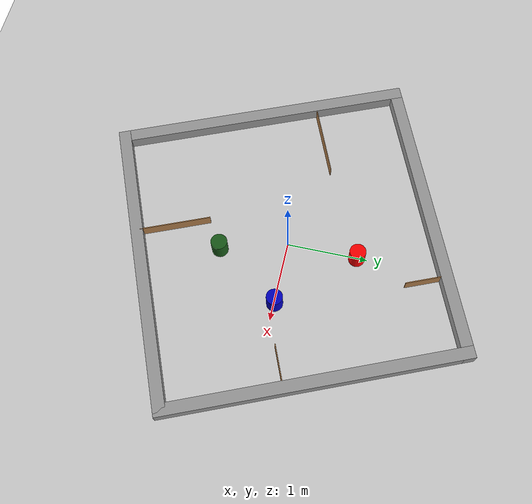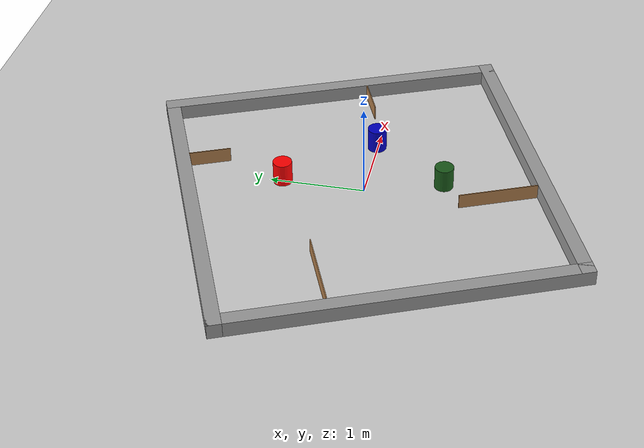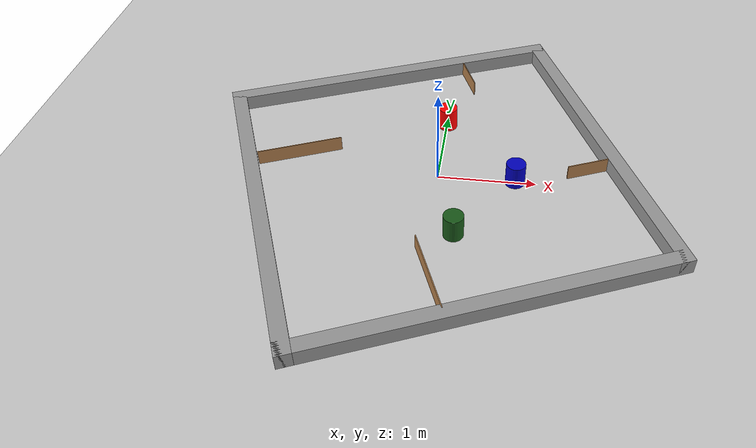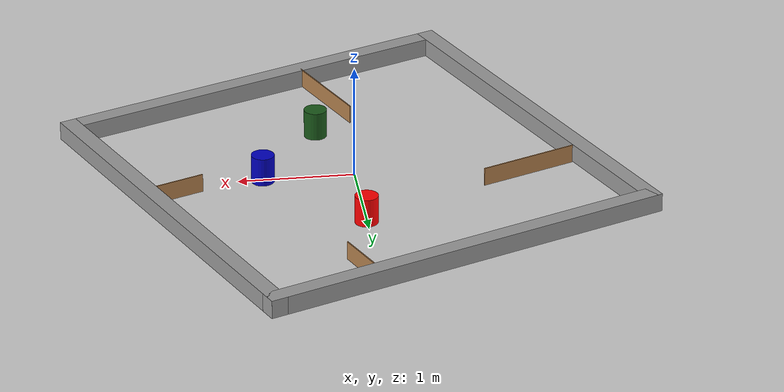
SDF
<sdf version="1.7">
 <world name="default">
  <light name="sun" type="directional">
   <pose>0 0 10 0 -0 0</pose>
   <diffuse>0.8 0.8 0.8 1</diffuse>
   <specular>0.2 0.2 0.2 1</specular>
   <attenuation>
    <range>1000</range>
    <constant>0.9</constant>
    <linear>0.01</linear>
    <quadratic>0.001</quadratic>
   </attenuation>
   <direction>-0.5 0.1 -0.9</direction>
   <spot><inner_angle>0</inner_angle><outer_angle>0</outer_angle><falloff>0</falloff></spot>
  </light>
  <model name="ground_plane">
   <static>1</static>
   <link name="link">
    <collision name="collision">
     <geometry><plane><normal>0 0 1</normal><size>100 100</size></plane></geometry>
     <surface>
      <contact><collide_bitmask>65535</collide_bitmask></contact>
      <friction><ode><mu>100</mu><mu2>50</mu2></ode></friction>
     </surface>
    </collision>
    <visual name="visual">
     <cast_shadows>0</cast_shadows>
     <geometry><plane><normal>0 0 1</normal><size>100 100</size></plane></geometry>
     <material>
      <script><uri>file://media/materials/scripts/gazebo.material</uri><name>Gazebo/Grey</name></script>
     </material>
    </visual>
   </link>
  </model>
  <gravity>0 0 -9.8</gravity>
  <magnetic_field>6e-06 2.3e-05 -4.2e-05</magnetic_field>
  <atmosphere type="adiabatic"/>
  <physics type="ode">
   <max_step_size>0.001</max_step_size>
   <real_time_factor>1</real_time_factor>
   <real_time_update_rate>1000</real_time_update_rate>
  </physics>
  <scene><ambient>0.4 0.4 0.4 1</ambient><background>0.7 0.7 0.7 1</background><shadows>1</shadows></scene>
  <spherical_coordinates>
   <surface_model>EARTH_WGS84</surface_model>
   <latitude_deg>0</latitude_deg>
   <longitude_deg>0</longitude_deg>
   <elevation>0</elevation>
   <heading_deg>0</heading_deg>
  </spherical_coordinates>
  <model name="arena">
   <pose>-0.02 -0.014 0 0 -0 0.4</pose>
   <link name="Wall_21">
    <collision name="Wall_21_Collision">
     <geometry><box><size>3.75 0.15 0.16</size></box></geometry>
     <pose>0 0 0.08 0 -0 0</pose>
    </collision>
    <visual name="Wall_21_Visual">
     <pose>0 0 0.08 0 -0 0</pose>
     <geometry><box><size>3.75 0.15 0.16</size></box></geometry>
     <material>
      <script><uri>file://media/materials/scripts/gazebo.material</uri><name>Gazebo/Grey</name></script>
      <ambient>1 1 1 1</ambient>
     </material>
     <meta><layer>0</layer></meta>
    </visual>
    <pose>-1.8 0 0 0 -0 -1.5708</pose>
   </link>
   <link name="Wall_22">
    <collision name="Wall_22_Collision">
     <geometry><box><size>3.75 0.15 0.16</size></box></geometry>
     <pose>0 0 0.08 0 -0 0</pose>
    </collision>
    <visual name="Wall_22_Visual">
     <pose>0 0 0.08 0 -0 0</pose>
     <geometry><box><size>3.75 0.15 0.16</size></box></geometry>
     <material>
      <script><uri>file://media/materials/scripts/gazebo.material</uri><name>Gazebo/Grey</name></script>
      <ambient>1 1 1 1</ambient>
     </material>
     <meta><layer>0</layer></meta>
    </visual>
    <pose>0 -1.8 0 0 -0 0</pose>
   </link>
   <link name="Wall_23">
    <collision name="Wall_23_Collision">
     <geometry><box><size>3.75 0.15 0.16</size></box></geometry>
     <pose>0 0 0.08 0 -0 0</pose>
    </collision>
    <visual name="Wall_23_Visual">
     <pose>0 0 0.08 0 -0 0</pose>
     <geometry><box><size>3.75 0.15 0.16</size></box></geometry>
     <material>
      <script><uri>file://media/materials/scripts/gazebo.material</uri><name>Gazebo/Grey</name></script>
      <ambient>1 1 1 1</ambient>
     </material>
     <meta><layer>0</layer></meta>
    </visual>
    <pose>1.8 0 0 0 -0 1.5708</pose>
   </link>
   <link name="Wall_24">
    <collision name="Wall_24_Collision">
     <geometry><box><size>3.75 0.15 0.16</size></box></geometry>
     <pose>0 0 0.08 0 -0 0</pose>
    </collision>
    <visual name="Wall_24_Visual">
     <pose>0 0 0.08 0 -0 0</pose>
     <geometry><box><size>3.75 0.15 0.16</size></box></geometry>
     <material>
      <script><uri>file://media/materials/scripts/gazebo.material</uri><name>Gazebo/Grey</name></script>
      <ambient>1 1 1 1</ambient>
     </material>
     <meta><layer>0</layer></meta>
    </visual>
    <pose>0 1.8 0 0 -0 3.14159</pose>
   </link>
   <link name="Wall_26">
    <collision name="Wall_26_Collision">
     <geometry><box><size>0.88 0.01 0.16</size></box></geometry>
     <pose>0 0 0.08 0 -0 0</pose>
    </collision>
    <visual name="Wall_26_Visual">
     <pose>0 0 0.08 0 -0 0</pose>
     <geometry><box><size>0.88 0.01 0.16</size></box></geometry>
     <material>
      <script><uri>file://media/materials/scripts/gazebo.material</uri><name>Gazebo/Wood</name></script>
      <ambient>1 1 1 1</ambient>
     </material>
     <meta><layer>0</layer></meta>
    </visual>
    <pose>-1.275 0.724 0 0 -0 0</pose>
   </link>
   <link name="Wall_28">
    <collision name="Wall_28_Collision">
     <geometry><box><size>0.88 0.01 0.16</size></box></geometry>
     <pose>0 0 0.08 0 -0 0</pose>
    </collision>
    <visual name="Wall_28_Visual">
     <pose>0 0 0.08 0 -0 0</pose>
     <geometry><box><size>0.88 0.01 0.16</size></box></geometry>
     <material>
      <script><uri>file://media/materials/scripts/gazebo.material</uri><name>Gazebo/Wood</name></script>
      <ambient>1 1 1 1</ambient>
     </material>
     <meta><layer>0</layer></meta>
    </visual>
    <pose>-0.453 -1.324 0 0 -0 1.5708</pose>
   </link>
   <link name="Wall_30">
    <collision name="Wall_30_Collision">
     <geometry><box><size>0.44 0.01 0.16</size></box></geometry>
     <pose>0 0 0.08 0 -0 0</pose>
    </collision>
    <visual name="Wall_30_Visual">
     <pose>0 0 0.08 0 -0 0</pose>
     <geometry><box><size>0.44 0.01 0.16</size></box></geometry>
     <material>
      <script><uri>file://media/materials/scripts/gazebo.material</uri><name>Gazebo/Wood</name></script>
      <ambient>1 1 1 1</ambient>
     </material>
     <meta><layer>0</layer></meta>
    </visual>
    <pose>0.836 1.509 0 0 -0 -1.5708</pose>
   </link>
   <link name="Wall_32">
    <collision name="Wall_32_Collision">
     <geometry><box><size>0.44 0.01 0.16</size></box></geometry>
     <pose>0 0 0.08 0 -0 0</pose>
    </collision>
    <visual name="Wall_32_Visual">
     <pose>0 0 0.08 0 -0 0</pose>
     <geometry><box><size>0.44 0.01 0.16</size></box></geometry>
     <material>
      <script><uri>file://media/materials/scripts/gazebo.material</uri><name>Gazebo/Wood</name></script>
      <ambient>1 1 1 1</ambient>
     </material>
     <meta><layer>0</layer></meta>
    </visual>
    <pose>1.503 -0.382 0 0 -0 3.14159</pose>
   </link>
   <static>1</static>
  </model>
  <model name="arena_cylinder">
   <link name="link">
    <inertial>
     <mass>1</mass>
     <inertia><ixx>0.145833</ixx><ixy>0</ixy><ixz>0</ixz><iyy>0.145833</iyy><iyz>0</iyz><izz>0.125</izz></inertia>
    </inertial>
    <pose>-0.546526 0 -0 0 -0 0</pose>
    <visual name="visual">
     <geometry><cylinder><radius>0.1</radius><length>0.249302</length></cylinder></geometry>
     <material>
      <script><name>Gazebo/Grey</name><uri>file://media/materials/scripts/gazebo.material</uri></script>
      <shader type="pixel"><normal_map>__default__</normal_map></shader>
      <diffuse>1 0 0 1</diffuse>
      <ambient>0.3 0.3 0.3 1</ambient>
      <specular>0.01 0.01 0.01 1</specular>
      <emissive>0 0 0 1</emissive>
     </material>
    </visual>
    <collision name="collision">
     <geometry><cylinder><radius>0.118405</radius><length>0.249302</length></cylinder></geometry>
     <surface>
      <friction>
       <ode><mu>1</mu><mu2>1</mu2><fdir1>0 0 0</fdir1><slip1>0</slip1><slip2>0</slip2></ode>
       <torsional>
        <coefficient>1</coefficient>
        <patch_radius>0</patch_radius>
        <surface_radius>0</surface_radius>
        <use_patch_radius>1</use_patch_radius>
        <ode><slip>0</slip></ode>
       </torsional>
      </friction>
      <bounce><restitution_coefficient>0</restitution_coefficient><threshold>1e+06</threshold></bounce>
      <contact>
       <collide_without_contact>0</collide_without_contact>
       <collide_without_contact_bitmask>1</collide_without_contact_bitmask>
       <collide_bitmask>1</collide_bitmask>
       <ode>
        <soft_cfm>0</soft_cfm>
        <soft_erp>0.2</soft_erp>
        <kp>1e+13</kp>
        <kd>1</kd>
        <max_vel>0.01</max_vel>
        <min_depth>0</min_depth>
       </ode>
       <bullet>
        <split_impulse>1</split_impulse>
        <split_impulse_penetration_threshold>-0.01</split_impulse_penetration_threshold>
        <soft_cfm>0</soft_cfm>
        <soft_erp>0.2</soft_erp>
        <kp>1e+13</kp>
        <kd>1</kd>
       </bullet>
      </contact>
     </surface>
    </collision>
   </link>
   <static>0</static>
   <pose>0.553713 0.868083 0.124642 3e-06 1e-06 9e-06</pose>
  </model>
  <model name="arena_cylinder_0">
   <link name="link">
    <inertial>
     <mass>1</mass>
     <inertia><ixx>0.145833</ixx><ixy>0</ixy><ixz>0</ixz><iyy>0.145833</iyy><iyz>0</iyz><izz>0.125</izz></inertia>
    </inertial>
    <pose>-0.546526 -0 0 0 -0 0</pose>
    <visual name="visual">
     <geometry><cylinder><radius>0.1</radius><length>0.249302</length></cylinder></geometry>
     <material>
      <script><name>Gazebo/Grey</name><uri>file://media/materials/scripts/gazebo.material</uri></script>
      <shader type="pixel"><normal_map>__default__</normal_map></shader>
      <diffuse>0 0 0.75 1</diffuse>
      <ambient>0.3 0.3 0.3 1</ambient>
      <specular>0.01 0.01 0.01 1</specular>
      <emissive>0 0 0 1</emissive>
     </material>
    </visual>
    <collision name="collision">
     <geometry><cylinder><radius>0.118405</radius><length>0.249302</length></cylinder></geometry>
     <surface>
      <friction>
       <ode><mu>1</mu><mu2>1</mu2><fdir1>0 0 0</fdir1><slip1>0</slip1><slip2>0</slip2></ode>
       <torsional>
        <coefficient>1</coefficient>
        <patch_radius>0</patch_radius>
        <surface_radius>0</surface_radius>
        <use_patch_radius>1</use_patch_radius>
        <ode><slip>0</slip></ode>
       </torsional>
      </friction>
      <bounce><restitution_coefficient>0</restitution_coefficient><threshold>1e+06</threshold></bounce>
      <contact>
       <collide_without_contact>0</collide_without_contact>
       <collide_without_contact_bitmask>1</collide_without_contact_bitmask>
       <collide_bitmask>1</collide_bitmask>
       <ode>
        <soft_cfm>0</soft_cfm>
        <soft_erp>0.2</soft_erp>
        <kp>1e+13</kp>
        <kd>1</kd>
        <max_vel>0.01</max_vel>
        <min_depth>0</min_depth>
       </ode>
       <bullet>
        <split_impulse>1</split_impulse>
        <split_impulse_penetration_threshold>-0.01</split_impulse_penetration_threshold>
        <soft_cfm>0</soft_cfm>
        <soft_erp>0.2</soft_erp>
        <kp>1e+13</kp>
        <kd>1</kd>
       </bullet>
      </contact>
     </surface>
    </collision>
   </link>
   <static>0</static>
   <pose>1.33127 0.010076 0.124642 3e-06 1e-06 9e-06</pose>
  </model>
  <model name="arena_0">
   <link name="link">
    <inertial>
     <mass>1</mass>
     <inertia><ixx>0.145833</ixx><ixy>0</ixy><ixz>0</ixz><iyy>0.145833</iyy><iyz>0</iyz><izz>0.125</izz></inertia>
    </inertial>
    <pose>-0.546526 -0 0 0 -0 0</pose>
    <visual name="visual">
     <geometry><cylinder><radius>0.1</radius><length>0.249302</length></cylinder></geometry>
     <material>
      <script><name>Gazebo/Grey</name><uri>file://media/materials/scripts/gazebo.material</uri></script>
      <shader type="pixel"><normal_map>__default__</normal_map></shader>
      <diffuse>0.1 0.35 0.1 1</diffuse>
      <ambient>0.3 0.3 0.3 1</ambient>
      <specular>0.01 0.01 0.01 1</specular>
      <emissive>0 0 0 1</emissive>
     </material>
    </visual>
    <collision name="collision">
     <geometry><cylinder><radius>0.118405</radius><length>0.249302</length></cylinder></geometry>
     <surface>
      <friction>
       <ode><mu>1</mu><mu2>1</mu2><fdir1>0 0 0</fdir1><slip1>0</slip1><slip2>0</slip2></ode>
       <torsional>
        <coefficient>1</coefficient>
        <patch_radius>0</patch_radius>
        <surface_radius>0</surface_radius>
        <use_patch_radius>1</use_patch_radius>
        <ode><slip>0</slip></ode>
       </torsional>
      </friction>
      <bounce><restitution_coefficient>0</restitution_coefficient><threshold>1e+06</threshold></bounce>
      <contact>
       <collide_without_contact>0</collide_without_contact>
       <collide_without_contact_bitmask>1</collide_without_contact_bitmask>
       <collide_bitmask>1</collide_bitmask>
       <ode>
        <soft_cfm>0</soft_cfm>
        <soft_erp>0.2</soft_erp>
        <kp>1e+13</kp>
        <kd>1</kd>
        <max_vel>0.01</max_vel>
        <min_depth>0</min_depth>
       </ode>
       <bullet>
        <split_impulse>1</split_impulse>
        <split_impulse_penetration_threshold>-0.01</split_impulse_penetration_threshold>
        <soft_cfm>0</soft_cfm>
        <soft_erp>0.2</soft_erp>
        <kp>1e+13</kp>
        <kd>1</kd>
       </bullet>
      </contact>
     </surface>
    </collision>
   </link>
   <static>0</static>
   <pose>0.785243 -0.801749 0.124642 3e-06 1e-06 9e-06</pose>
  </model>
 </world>
</sdf>
